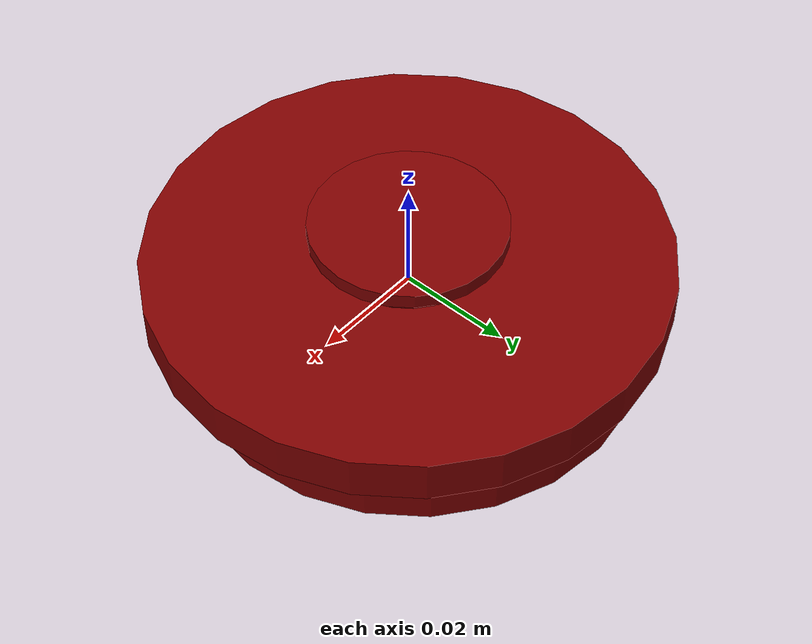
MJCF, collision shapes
<?xml version='1.0' encoding='UTF-8'?>
<mujoco model="model">
  <option timestep="0.002" gravity="0.0 0.0 -9.81"/>
  <compiler angle="radian"/>
  <asset>
    <mesh file="visuals/lid.obj" name="lid_vis"/>
    <texture file="visuals/T_BC001.png" name="lid_material" type="2d"/>
    <material name="lid_material" rgba="1 1 1 1.0" texture="lid_material" shininess="0.5" specular="0.3103448502657381"/>
  </asset>
  <default>
    <default class="visual">
      <geom conaffinity="0" contype="0" group="1" type="mesh"/>
    </default>
    <default class="collision">
      <geom group="0" rgba="0.5 0 0 0.5" density="1000" solref="0.01 1.8" solimp="0.8 0.95 0.02" condim="3"/>
    </default>
    <default class="spawn">
      <geom group="0" rgba="1 1 1 0.5" contype="0" conaffinity="0"/>
      <site group="0" rgba="1 1 1 0.5"/>
    </default>
    <default class="region">
      <geom group="1" conaffinity="0" contype="0" rgba="0 1 0 0" mass="0"/>
    </default>
  </default>
  <worldbody>
    <body>
      <body name="object">
        <geom mesh="lid_vis" type="mesh" solimp="0.998 0.998 0.001" solref="0.001 1" friction="0.95 0.3 0.1" class="visual" material="lid_material"/>
        <geom type="cylinder" pos="-0.001431995420716703 -0.0002450098982080817 0.001906774123199284" size="0.037832166999578476 0.004617499187588692" quat="1.0 0.0 0.0 0.0" class="collision"/>
        <geom type="cylinder" pos="5.3883450163993984e-06 -4.156519025855232e-06 0.009565717540681362" size="0.013270551338791847 0.002689134096726775" quat="1.0 0.0 0.0 0.0" class="collision"/>
        <geom type="cylinder" pos="-0.0015163180651143193 7.978671783348545e-05 -0.004426531959325075" size="0.04061230272054672 0.00906763132661581" quat="1.0 0.0 0.0 0.0" class="collision"/>
        <geom type="cylinder" name="handle_main" pos="5.3883450163993984e-06 -4.156519025855232e-06 0.012320984154939651" size="0.01683618500828743 0.0013016912853345275" quat="1.0 0.0 0.0 0.0" class="collision"/>
        <geom type="cylinder" pos="2.461862180780372e-08 -2.059011805499722e-08 0.0029025408439338207" size="0.044937875121831894 0.00399757968261838" quat="1.0 0.0 0.0 0.0" class="collision"/>
        <geom class="region" name="reg_main" type="box" pos="9.313225746154785e-10 0.0 0.0" size="0.05 0.05 0.014625295832753182"/>
      </body>
    </body>
  </worldbody>
  <actuator/>
</mujoco>
